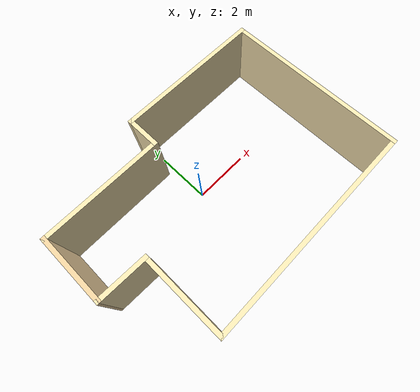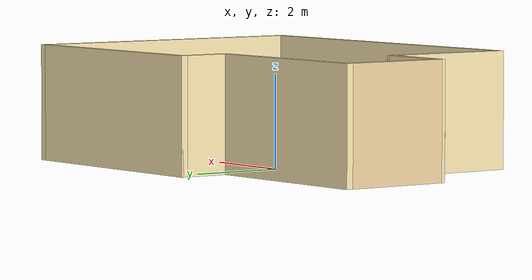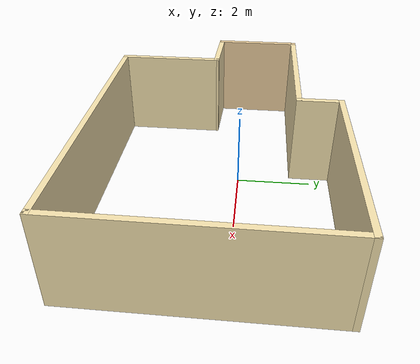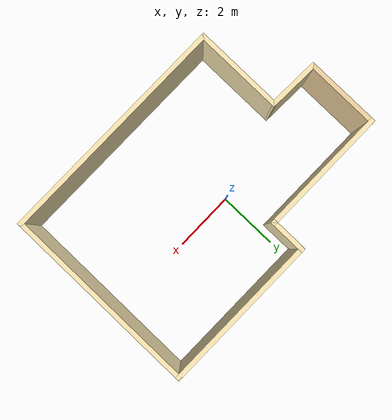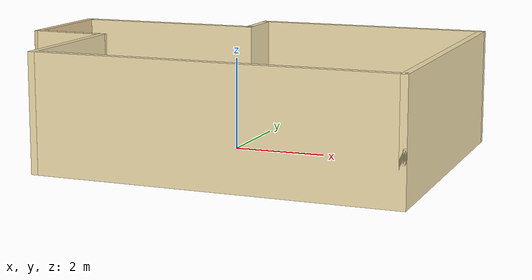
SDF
<?xml version='1.0'?>
<sdf version='1.7'>
  <model name='room'>
    <pose>0.178847 -0.555 0 0 -0 0</pose>
    <link name='Wall_0'>
      <collision name='Wall_0_Collision'>
        <geometry>
          <box>
            <size>3 0.15 2.5</size>
          </box>
        </geometry>
        <pose>0 0 1.25 0 -0 0</pose>
      </collision>
      <visual name='Wall_0_Visual'>
        <pose>0 0 1.25 0 -0 0</pose>
        <geometry>
          <box>
            <size>3 0.15 2.5</size>
          </box>
        </geometry>
        <material>
          <script>
            <uri>file://media/materials/scripts/gazebo.material</uri>
            <name>Gazebo/Grey</name>
          </script>
          <ambient>0.964706 0.890196 0.686275 1</ambient>
        </material>
        <meta>
          <layer>0</layer>
        </meta>
      </visual>
      <pose>-2.99885 -1.75 0 0 -0 -1.5708</pose>
    </link>
    <link name='Wall_1'>
      <collision name='Wall_1_Collision'>
        <geometry>
          <box>
            <size>7.75 0.15 2.5</size>
          </box>
        </geometry>
        <pose>0 0 1.25 0 -0 0</pose>
      </collision>
      <visual name='Wall_1_Visual'>
        <pose>0 0 1.25 0 -0 0</pose>
        <geometry>
          <box>
            <size>7.75 0.15 2.5</size>
          </box>
        </geometry>
        <material>
          <script>
            <uri>file://media/materials/scripts/gazebo.material</uri>
            <name>Gazebo/Grey</name>
          </script>
          <ambient>0.964706 0.890196 0.686275 1</ambient>
        </material>
        <meta>
          <layer>0</layer>
        </meta>
      </visual>
      <pose>0.801153 -3.175 0 0 -0 0</pose>
    </link>
    <link name='Wall_2'>
      <collision name='Wall_2_Collision'>
        <geometry>
          <box>
            <size>6.5 0.15 2.5</size>
          </box>
        </geometry>
        <pose>0 0 1.25 0 -0 0</pose>
      </collision>
      <visual name='Wall_2_Visual'>
        <pose>0 0 1.25 0 -0 0</pose>
        <geometry>
          <box>
            <size>6.5 0.15 2.5</size>
          </box>
        </geometry>
        <material>
          <script>
            <uri>file://media/materials/scripts/gazebo.material</uri>
            <name>Gazebo/Grey</name>
          </script>
          <ambient>0.964706 0.890196 0.686275 1</ambient>
        </material>
        <meta>
          <layer>0</layer>
        </meta>
      </visual>
      <pose>4.60115 0 0 0 -0 1.5708</pose>
    </link>
    <link name='Wall_3'>
      <collision name='Wall_3_Collision'>
        <geometry>
          <box>
            <size>5.25 0.15 2.5</size>
          </box>
        </geometry>
        <pose>0 0 1.25 0 -0 0</pose>
      </collision>
      <visual name='Wall_3_Visual'>
        <pose>0 0 1.25 0 -0 0</pose>
        <geometry>
          <box>
            <size>5.25 0.15 2.5</size>
          </box>
        </geometry>
        <material>
          <script>
            <uri>file://media/materials/scripts/gazebo.material</uri>
            <name>Gazebo/Grey</name>
          </script>
          <ambient>0.964706 0.890196 0.686275 1</ambient>
        </material>
        <meta>
          <layer>0</layer>
        </meta>
      </visual>
      <pose>2.05115 3.175 0 0 -0 3.14159</pose>
    </link>
    <link name='Wall_4'>
      <collision name='Wall_4_Collision'>
        <geometry>
          <box>
            <size>1.25 0.15 2.5</size>
          </box>
        </geometry>
        <pose>0 0 1.25 0 -0 0</pose>
      </collision>
      <visual name='Wall_4_Visual'>
        <pose>0 0 1.25 0 -0 0</pose>
        <geometry>
          <box>
            <size>1.25 0.15 2.5</size>
          </box>
        </geometry>
        <material>
          <script>
            <uri>file://media/materials/scripts/gazebo.material</uri>
            <name>Gazebo/Grey</name>
          </script>
          <ambient>0.964706 0.890196 0.686275 1</ambient>
        </material>
        <meta>
          <layer>0</layer>
        </meta>
      </visual>
      <pose>-0.498847 2.625 0 0 -0 -1.5708</pose>
    </link>
    <link name='Wall_5'>
      <collision name='Wall_5_Collision'>
        <geometry>
          <box>
            <size>4.25 0.15 2.5</size>
          </box>
        </geometry>
        <pose>0 0 1.25 0 -0 0</pose>
      </collision>
      <visual name='Wall_5_Visual'>
        <pose>0 0 1.25 0 -0 0</pose>
        <geometry>
          <box>
            <size>4.25 0.15 2.5</size>
          </box>
        </geometry>
        <material>
          <script>
            <uri>file://media/materials/scripts/gazebo.material</uri>
            <name>Gazebo/Grey</name>
          </script>
          <ambient>0.964706 0.890196 0.686275 1</ambient>
        </material>
        <meta>
          <layer>0</layer>
        </meta>
      </visual>
      <pose>-2.54885 2.075 0 0 -0 3.14159</pose>
    </link>
    <link name='Wall_6'>
      <collision name='Wall_6_Collision'>
        <geometry>
          <box>
            <size>2.5 0.15 2.5</size>
          </box>
        </geometry>
        <pose>0 0 1.25 0 -0 0</pose>
      </collision>
      <visual name='Wall_6_Visual'>
        <pose>0 0 1.25 0 -0 0</pose>
        <geometry>
          <box>
            <size>2.5 0.15 2.5</size>
          </box>
        </geometry>
        <material>
          <script>
            <uri>file://media/materials/scripts/gazebo.material</uri>
            <name>Gazebo/Grey</name>
          </script>
          <ambient>0.921569 0.807843 0.615686 1</ambient>
        </material>
        <meta>
          <layer>0</layer>
        </meta>
      </visual>
      <pose>-4.59885 0.9 0 0 -0 -1.5708</pose>
    </link>
    <link name='Wall_7'>
      <collision name='Wall_7_Collision'>
        <geometry>
          <box>
            <size>1.75078 0.15 2.5</size>
          </box>
        </geometry>
        <pose>0 0 1.25 0 -0 0</pose>
      </collision>
      <visual name='Wall_7_Visual'>
        <pose>0 0 1.25 0 -0 0</pose>
        <geometry>
          <box>
            <size>1.75078 0.15 2.5</size>
          </box>
        </geometry>
        <material>
          <script>
            <uri>file://media/materials/scripts/gazebo.material</uri>
            <name>Gazebo/Grey</name>
          </script>
          <ambient>0.964706 0.890196 0.686275 1</ambient>
        </material>
        <meta>
          <layer>0</layer>
        </meta>
      </visual>
      <pose>-3.79885 -0.3 0 0 -0 -0.03124</pose>
    </link>
    <static>1</static>
  </model>
</sdf>
